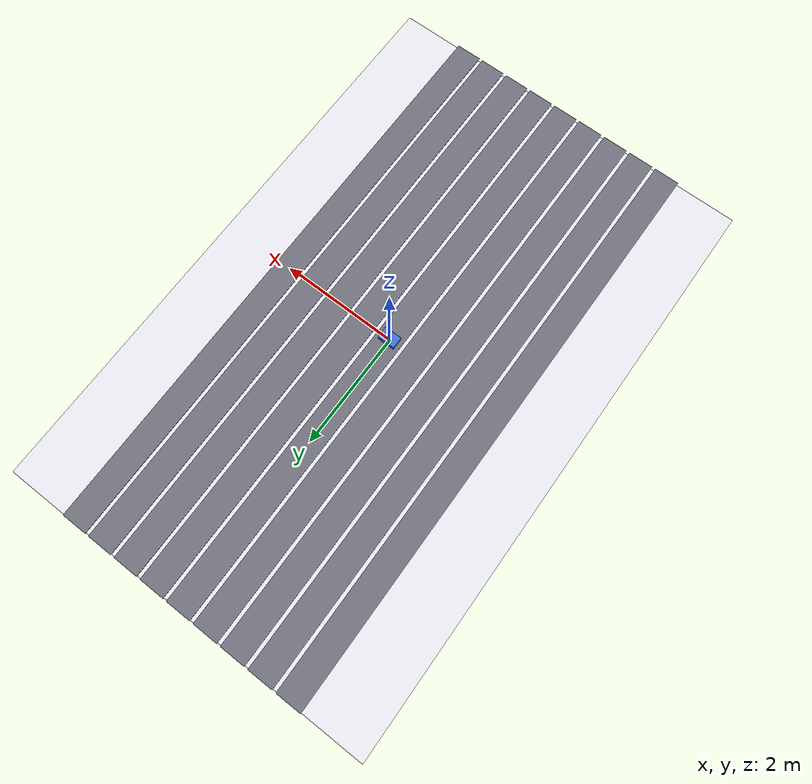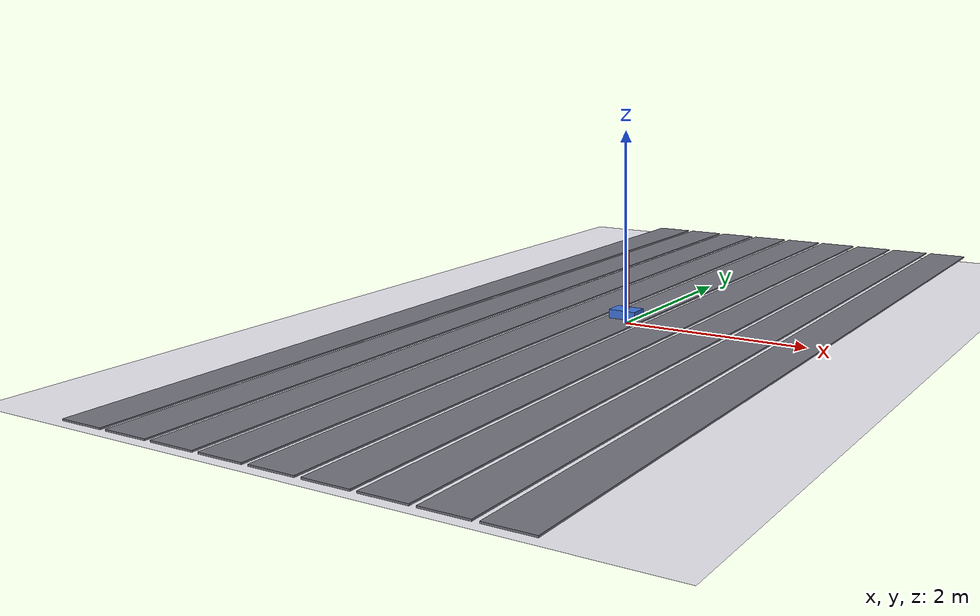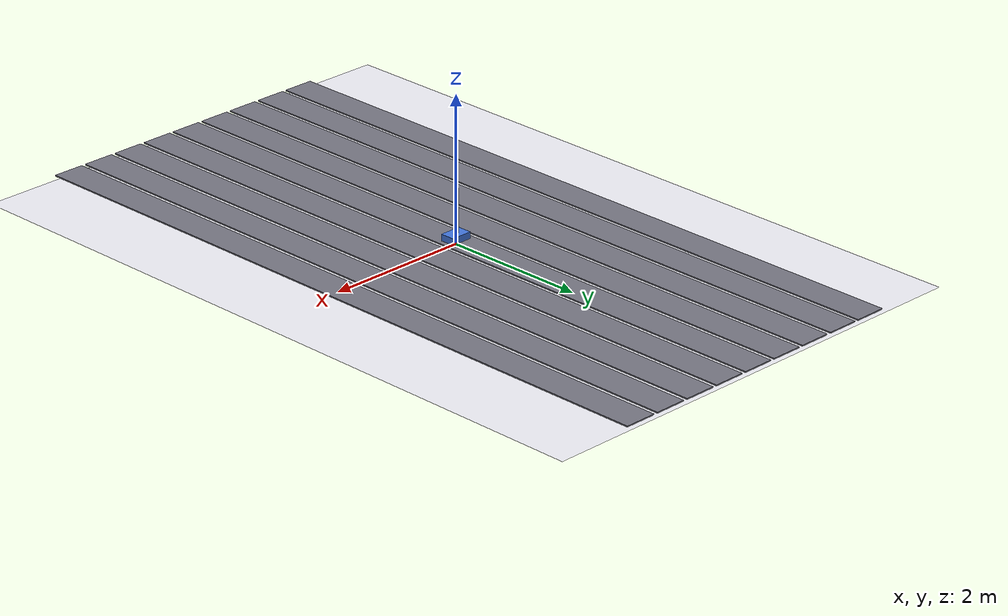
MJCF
<mujoco model="cartpole">

  <!--
    GLOBAL PHYSICS SETTINGS
    - timestep: simulation dt (physics integration step)
    - gravity: sets the "down" direction and magnitude
  -->
  <option timestep="0.002" gravity="0 0 -9.81"/>

  <worldbody>

    <!-- Lighting: main light from above-front, fill from the side -->
    <light name="main" pos="0 0 4" dir="0 0 -1" directional="true" diffuse="1 1 1" specular="0.4 0.4 0.4"/>
    <light name="fill" pos="-2 2 3" dir="0.3 -0.3 -1" directional="true" diffuse="0.5 0.5 0.5" specular="0.1 0.1 0.1"/>

    <!--
      WORLD / GROUND
      Light gray plane plus dark stripes along x so cart sliding is easy to see.
    -->
    <geom type="plane" size="5 5 0.1" rgba="0.92 0.92 0.95 1"/>

    <!-- Dark floor stripes (perpendicular to cart motion) so motion is visible -->
    <geom name="stripe_m2" type="box" pos="-2 0 0.051" size="0.22 5 0.008" rgba="0.45 0.45 0.5 1" contype="0" conaffinity="0"/>
    <geom name="stripe_m1_5" type="box" pos="-1.5 0 0.051" size="0.22 5 0.008" rgba="0.45 0.45 0.5 1" contype="0" conaffinity="0"/>
    <geom name="stripe_m1" type="box" pos="-1 0 0.051" size="0.22 5 0.008" rgba="0.45 0.45 0.5 1" contype="0" conaffinity="0"/>
    <geom name="stripe_m0_5" type="box" pos="-0.5 0 0.051" size="0.22 5 0.008" rgba="0.45 0.45 0.5 1" contype="0" conaffinity="0"/>
    <geom name="stripe_0" type="box" pos="0 0 0.051" size="0.22 5 0.008" rgba="0.45 0.45 0.5 1" contype="0" conaffinity="0"/>
    <geom name="stripe_0_5" type="box" pos="0.5 0 0.051" size="0.22 5 0.008" rgba="0.45 0.45 0.5 1" contype="0" conaffinity="0"/>
    <geom name="stripe_1" type="box" pos="1 0 0.051" size="0.22 5 0.008" rgba="0.45 0.45 0.5 1" contype="0" conaffinity="0"/>
    <geom name="stripe_1_5" type="box" pos="1.5 0 0.051" size="0.22 5 0.008" rgba="0.45 0.45 0.5 1" contype="0" conaffinity="0"/>
    <geom name="stripe_2" type="box" pos="2 0 0.051" size="0.22 5 0.008" rgba="0.45 0.45 0.5 1" contype="0" conaffinity="0"/>

    <!--
      CART BODY
      This is the rigid cart object.
      In problem framing, the cart has position x and velocity ẋ.
      Those come from this slide joint below.
    -->
    <body name="cart" pos="0 0 0.1">

      <!--
        CART DOF: SLIDE JOINT
        This creates the horizontal degree of freedom (x).
        - axis="1 0 0" means motion along +x
        - range limits how far the cart can slide
      -->
      <joint name="slide" type="slide" axis="1 0 0" range="-2 2"/>

      <!--
        CART GEOMETRY
        A box shape so we can see the cart in the viewer.
      -->
      <geom type="box" size="0.15 0.10 0.05" rgba="0.25 0.45 0.85 1"/>

      <!--
        POLE BODY (attached to cart)
        The pole is a child body of the cart, meaning it moves with the cart.
      -->
      <body name="pole" pos="0 0 0.05">

        <joint name="hinge" type="hinge" axis="0 1 0"/>

        <!--
          POLE GEOMETRY
          Capsule from (0,0,0) to (0,0,0.6).
          This gives the pole a visible shape and a lever arm.
        -->
        <geom type="capsule" fromto="0 0 0 0 0 0.6" size="0.03" rgba="0.85 0.25 0.25 1"/>

      </body>
    </body>
  </worldbody>

  <actuator>
    <motor name="cart_motor" joint="slide" ctrlrange="-10 10"/>
  </actuator>

</mujoco>
